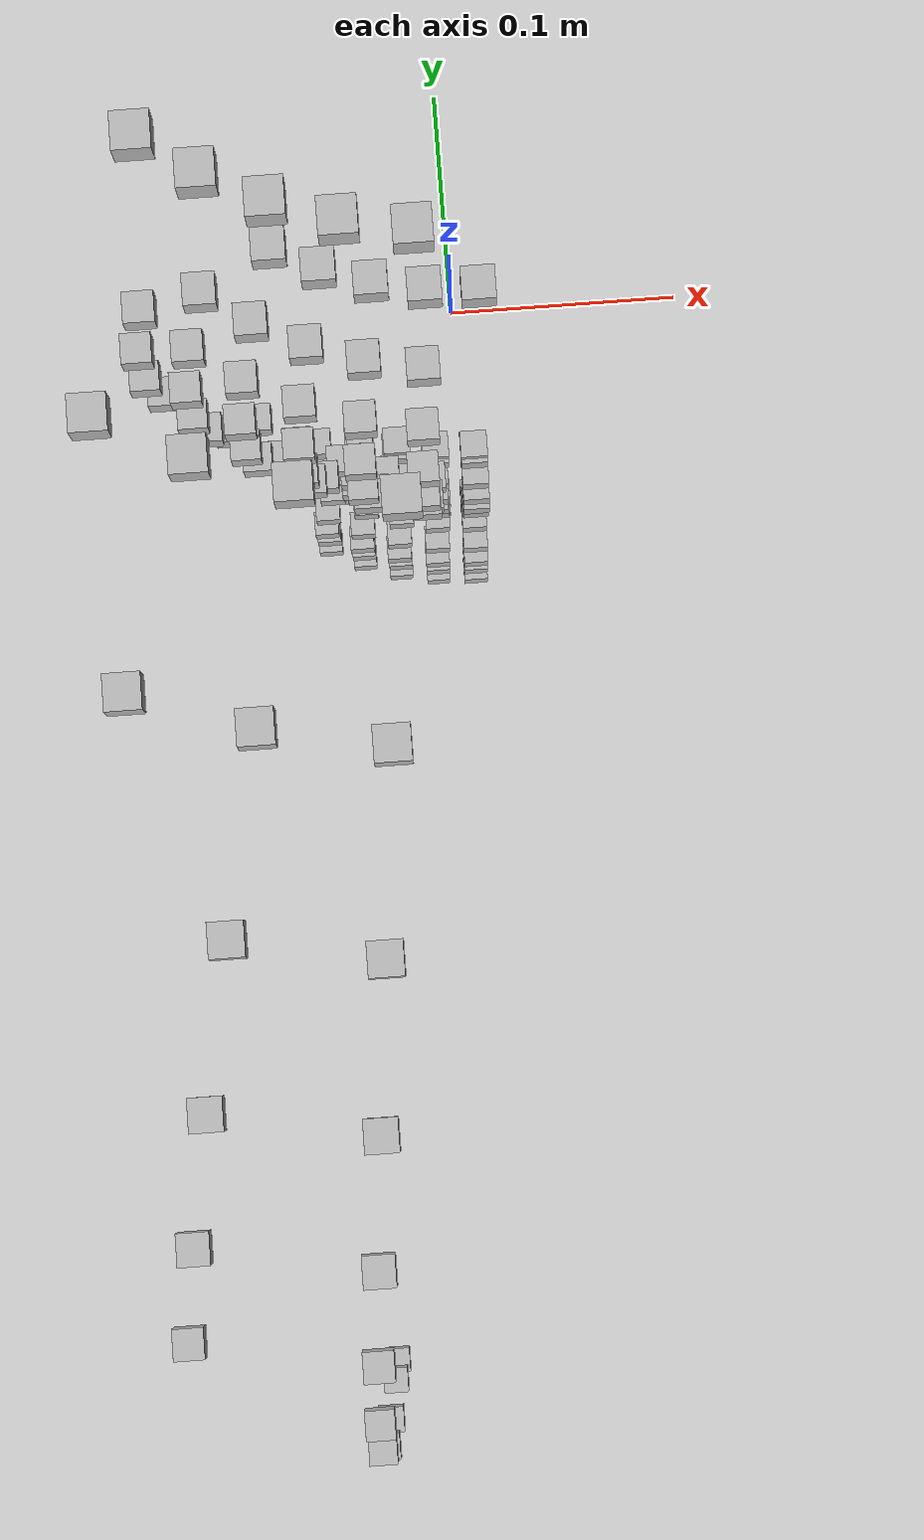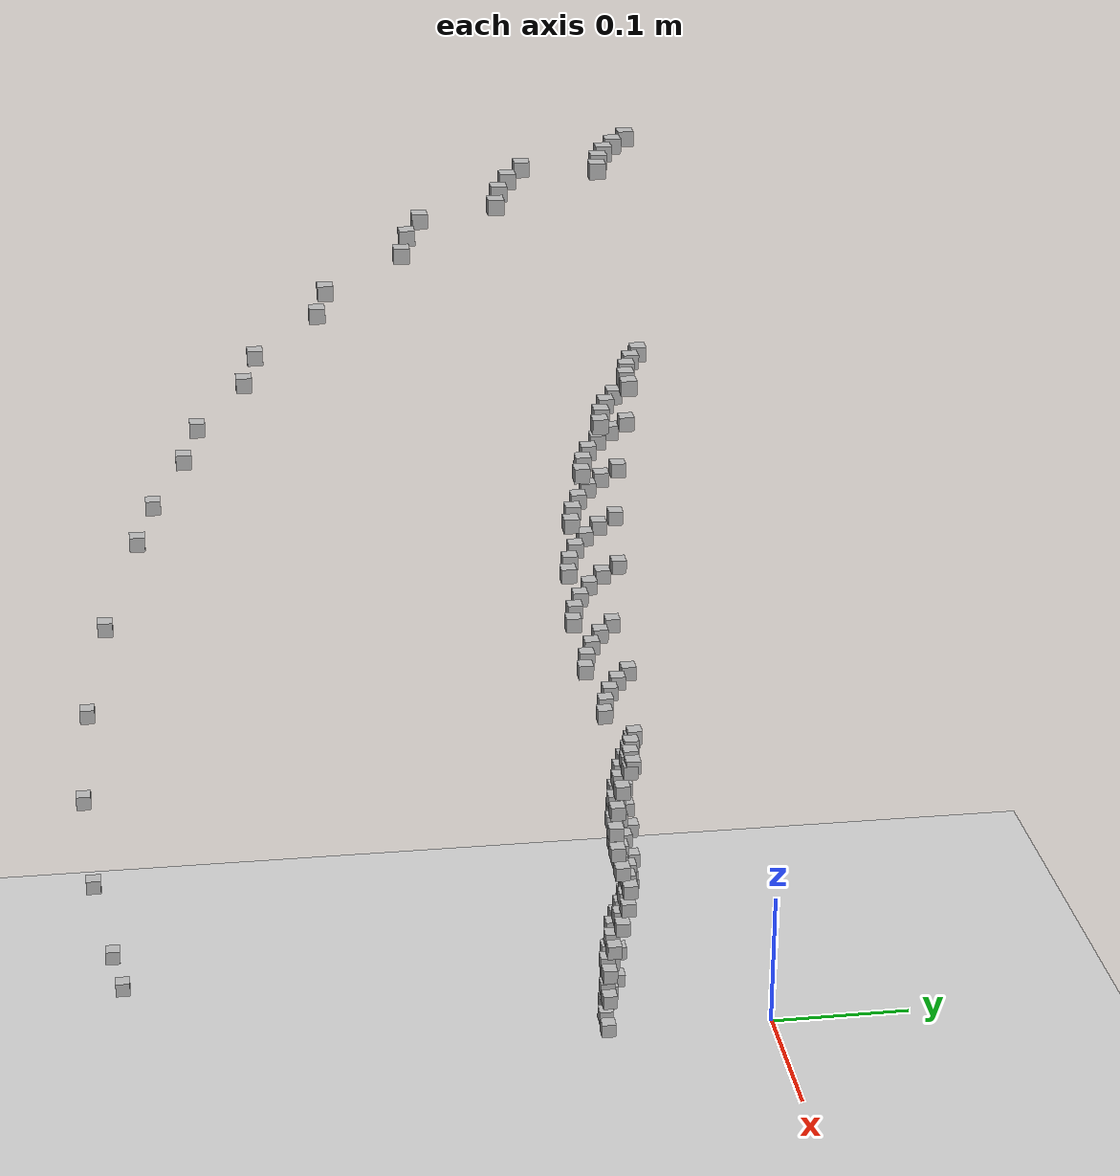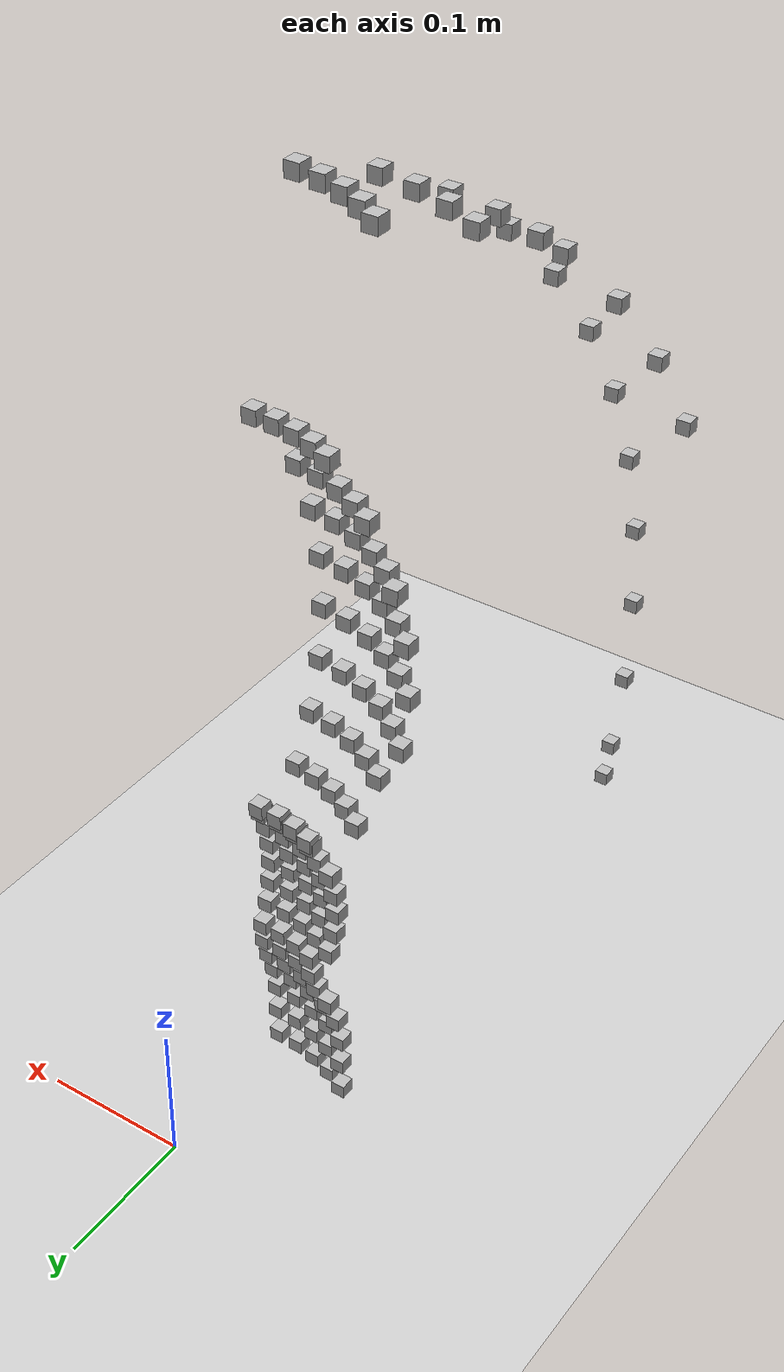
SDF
<sdf version="1.6">
 <world name="default">
  <model name="ground_plane">
   <static>1</static>
   <link name="link">
    <collision name="collision">
     <geometry><plane><normal>0 0 1</normal><size>100 100</size></plane></geometry>
     <surface>
      <contact><collide_bitmask>65535</collide_bitmask></contact>
      <friction><ode><mu>100</mu><mu2>50</mu2></ode></friction>
     </surface>
    </collision>
    <visual name="visual">
     <cast_shadows>0</cast_shadows>
     <geometry><plane><normal>0 0 1</normal><size>100 100</size></plane></geometry>
     <material>
      <script><uri>file://media/materials/scripts/gazebo.material</uri><name>Gazebo/Grey</name></script>
     </material>
    </visual>
   </link>
  </model>
  <model name="box_1685262135_6581895">
   <pose>-0.05602585389841081 -0.4562939630717491 0.031024085780011867 0.0 0.0 0.0</pose>
   <static>1</static>
   <link name="box_1685262135_6581895_link">
    <visual name="visual"><geometry><box><size>0.01 0.01 0.01</size></box></geometry></visual>
   </link>
  </model>
  <model name="box_1685262135_658946">
   <pose>-0.0566995302399395 -0.4617806165774892 0.05746253559996678 0.0 0.0 0.0</pose>
   <static>1</static>
   <link name="box_1685262135_658946_link">
    <visual name="visual"><geometry><box><size>0.01 0.01 0.01</size></box></geometry></visual>
   </link>
  </model>
  <model name="box_1685262135_6596751">
   <pose>-0.05789199654093433 -0.4714924752364766 0.11486971929344875 0.0 0.0 0.0</pose>
   <static>1</static>
   <link name="box_1685262135_6596751_link">
    <visual name="visual"><geometry><box><size>0.01 0.01 0.01</size></box></geometry></visual>
   </link>
  </model>
  <model name="box_1685262135_6604178">
   <pose>-0.05820118961154619 -0.4740106507166687 0.18152491402812204 0.0 0.0 0.0</pose>
   <static>1</static>
   <link name="box_1685262135_6604178_link">
    <visual name="visual"><geometry><box><size>0.01 0.01 0.01</size></box></geometry></visual>
   </link>
  </model>
  <model name="box_1685262135_6611378">
   <pose>-0.0573758755483795 -0.46728900707435994 0.24785452819062248 0.0 0.0 0.0</pose>
   <static>1</static>
   <link name="box_1685262135_6611378_link">
    <visual name="visual"><geometry><box><size>0.01 0.01 0.01</size></box></geometry></visual>
   </link>
  </model>
  <model name="box_1685262135_6618977">
   <pose>-0.05543158307940745 -0.4514540156497495 0.31265492137086764 0.0 0.0 0.0</pose>
   <static>1</static>
   <link name="box_1685262135_6618977_link">
    <visual name="visual"><geometry><box><size>0.01 0.01 0.01</size></box></geometry></visual>
   </link>
  </model>
  <model name="box_1685262135_662612">
   <pose>-0.11130863569951137 -0.41540948375175124 0.37450685986133164 0.0 0.0 0.0</pose>
   <static>1</static>
   <link name="box_1685262135_662612_link">
    <visual name="visual"><geometry><box><size>0.01 0.01 0.01</size></box></geometry></visual>
   </link>
  </model>
  <model name="box_1685262135_6626284">
   <pose>-0.0524115616864629 -0.42685791520571464 0.37450685986133164 0.0 0.0 0.0</pose>
   <static>1</static>
   <link name="box_1685262135_6626284_link">
    <visual name="visual"><geometry><box><size>0.01 0.01 0.01</size></box></geometry></visual>
   </link>
  </model>
  <model name="box_1685262135_6633182">
   <pose>-0.06085809397461202 -0.10128487713690645 0.005648136022940203 0.0 0.0 0.0</pose>
   <static>1</static>
   <link name="box_1685262135_6633182_link">
    <visual name="visual"><geometry><box><size>0.01 0.01 0.01</size></box></geometry></visual>
   </link>
  </model>
  <model name="box_1685262135_6633444">
   <pose>-0.046169696756029506 -0.1087689893320574 0.005648136022940203 0.0 0.0 0.0</pose>
   <static>1</static>
   <link name="box_1685262135_6633444_link">
    <visual name="visual"><geometry><box><size>0.01 0.01 0.01</size></box></geometry></visual>
   </link>
  </model>
  <model name="box_1685262135_6633646">
   <pose>-0.030582658907342606 -0.11413603687275145 0.005648136022940203 0.0 0.0 0.0</pose>
   <static>1</static>
   <link name="box_1685262135_6633646_link">
    <visual name="visual"><geometry><box><size>0.01 0.01 0.01</size></box></geometry></visual>
   </link>
  </model>
  <model name="box_1685262135_6633813">
   <pose>-0.014400364390283131 -0.11728155628353508 0.005648136022940203 0.0 0.0 0.0</pose>
   <static>1</static>
   <link name="box_1685262135_6633813_link">
    <visual name="visual"><geometry><box><size>0.01 0.01 0.01</size></box></geometry></visual>
   </link>
  </model>
  <model name="box_1685262135_6634004">
   <pose>0.002062216839461438 -0.11814432360705267 0.005648136022940203 0.0 0.0 0.0</pose>
   <static>1</static>
   <link name="box_1685262135_6634004_link">
    <visual name="visual"><geometry><box><size>0.01 0.01 0.01</size></box></geometry></visual>
   </link>
  </model>
  <model name="box_1685262135_6640928">
   <pose>-0.102713564813376 -0.383332242510038 0.4324042100445494 0.0 0.0 0.0</pose>
   <static>1</static>
   <link name="box_1685262135_6640928_link">
    <visual name="visual"><geometry><box><size>0.01 0.01 0.01</size></box></geometry></visual>
   </link>
  </model>
  <model name="box_1685262135_6641088">
   <pose>-0.048364426573206075 -0.39389664480253084 0.4324042100445494 0.0 0.0 0.0</pose>
   <static>1</static>
   <link name="box_1685262135_6641088_link">
    <visual name="visual"><geometry><box><size>0.01 0.01 0.01</size></box></geometry></visual>
   </link>
  </model>
  <model name="box_1685262135_664784">
   <pose>-0.060547070302371095 -0.10076724682067058 0.02920890265866033 0.0 0.0 0.0</pose>
   <static>1</static>
   <link name="box_1685262135_664784_link">
    <visual name="visual"><geometry><box><size>0.01 0.01 0.01</size></box></geometry></visual>
   </link>
  </model>
  <model name="box_1685262135_6648">
   <pose>-0.045933740161048064 -0.10821311042953867 0.02920890265866033 0.0 0.0 0.0</pose>
   <static>1</static>
   <link name="box_1685262135_6648_link">
    <visual name="visual"><geometry><box><size>0.01 0.01 0.01</size></box></geometry></visual>
   </link>
  </model>
  <model name="box_1685262135_6648192">
   <pose>-0.03042636201634531 -0.11355272893448448 0.02920890265866033 0.0 0.0 0.0</pose>
   <static>1</static>
   <link name="box_1685262135_6648192_link">
    <visual name="visual"><geometry><box><size>0.01 0.01 0.01</size></box></geometry></visual>
   </link>
  </model>
  <model name="box_1685262135_6648452">
   <pose>-0.014326769344468162 -0.11668217273503531 0.02920890265866033 0.0 0.0 0.0</pose>
   <static>1</static>
   <link name="box_1685262135_6648452_link">
    <visual name="visual"><geometry><box><size>0.01 0.01 0.01</size></box></geometry></visual>
   </link>
  </model>
  <model name="box_1685262135_6648655">
   <pose>0.002051677596240414 -0.11754053076730298 0.02920890265866033 0.0 0.0 0.0</pose>
   <static>1</static>
   <link name="box_1685262135_6648655_link">
    <visual name="visual"><geometry><box><size>0.01 0.01 0.01</size></box></geometry></visual>
   </link>
  </model>
  <model name="box_1685262135_6655657">
   <pose>-0.09210265672984942 -0.34373179442787355 0.4851615351605009 0.0 0.0 0.0</pose>
   <static>1</static>
   <link name="box_1685262135_6655657_link">
    <visual name="visual"><geometry><box><size>0.01 0.01 0.01</size></box></geometry></visual>
   </link>
  </model>
  <model name="box_1685262135_6655822">
   <pose>-0.04336810027674081 -0.35320483257691837 0.4851615351605009 0.0 0.0 0.0</pose>
   <static>1</static>
   <link name="box_1685262135_6655822_link">
    <visual name="visual"><geometry><box><size>0.01 0.01 0.01</size></box></geometry></visual>
   </link>
  </model>
  <model name="box_1685262135_6662629">
   <pose>-0.060687051502615774 -0.1010002146601526 0.05028140928145608 0.0 0.0 0.0</pose>
   <static>1</static>
   <link name="box_1685262135_6662629_link">
    <visual name="visual"><geometry><box><size>0.01 0.01 0.01</size></box></geometry></visual>
   </link>
  </model>
  <model name="box_1685262135_6662788">
   <pose>-0.046039936217229814 -0.10846329265973559 0.05028140928145608 0.0 0.0 0.0</pose>
   <static>1</static>
   <link name="box_1685262135_6662788_link">
    <visual name="visual"><geometry><box><size>0.01 0.01 0.01</size></box></geometry></visual>
   </link>
  </model>
  <model name="box_1685262135_666295">
   <pose>-0.03049670594302677 -0.1138152560428636 0.05028140928145608 0.0 0.0 0.0</pose>
   <static>1</static>
   <link name="box_1685262135_666295_link">
    <visual name="visual"><geometry><box><size>0.01 0.01 0.01</size></box></geometry></visual>
   </link>
  </model>
  <model name="box_1685262135_666313">
   <pose>-0.01435989197713151 -0.11695193493005217 0.05028140928145608 0.0 0.0 0.0</pose>
   <static>1</static>
   <link name="box_1685262135_666313_link">
    <visual name="visual"><geometry><box><size>0.01 0.01 0.01</size></box></geometry></visual>
   </link>
  </model>
  <model name="box_1685262135_666338">
   <pose>0.0020564209519635334 -0.11781227743468152 0.05028140928145608 0.0 0.0 0.0</pose>
   <static>1</static>
   <link name="box_1685262135_666338_link">
    <visual name="visual"><geometry><box><size>0.01 0.01 0.01</size></box></geometry></visual>
   </link>
  </model>
  <model name="box_1685262135_6670432">
   <pose>-0.07969085721392115 -0.2974103280210704 0.5316791207351375 0.0 0.0 0.0</pose>
   <static>1</static>
   <link name="box_1685262135_6670432_link">
    <visual name="visual"><geometry><box><size>0.01 0.01 0.01</size></box></geometry></visual>
   </link>
  </model>
  <model name="box_1685262135_6670594">
   <pose>-0.037523793661347254 -0.30560677486984955 0.5316791207351375 0.0 0.0 0.0</pose>
   <static>1</static>
   <link name="box_1685262135_6670594_link">
    <visual name="visual"><geometry><box><size>0.01 0.01 0.01</size></box></geometry></visual>
   </link>
  </model>
  <model name="box_1685262135_6677356">
   <pose>-0.05917713652477191 -0.09848729414243332 0.06994559093984248 0.0 0.0 0.0</pose>
   <static>1</static>
   <link name="box_1685262135_6677356_link">
    <visual name="visual"><geometry><box><size>0.01 0.01 0.01</size></box></geometry></visual>
   </link>
  </model>
  <model name="box_1685262135_6677513">
   <pose>-0.044894446569073564 -0.10576468816210008 0.06994559093984248 0.0 0.0 0.0</pose>
   <static>1</static>
   <link name="box_1685262135_6677513_link">
    <visual name="visual"><geometry><box><size>0.01 0.01 0.01</size></box></geometry></visual>
   </link>
  </model>
  <model name="box_1685262135_6677673">
   <pose>-0.029737937277584336 -0.1109834928322412 0.06994559093984248 0.0 0.0 0.0</pose>
   <static>1</static>
   <link name="box_1685262135_6677673_link">
    <visual name="visual"><geometry><box><size>0.01 0.01 0.01</size></box></geometry></visual>
   </link>
  </model>
  <model name="box_1685262135_6677833">
   <pose>-0.014002612863389163 -0.11404213005625474 0.06994559093984248 0.0 0.0 0.0</pose>
   <static>1</static>
   <link name="box_1685262135_6677833_link">
    <visual name="visual"><geometry><box><size>0.01 0.01 0.01</size></box></geometry></visual>
   </link>
  </model>
  <model name="box_1685262135_6677992">
   <pose>0.0020052564824557697 -0.11488106693972355 0.06994559093984248 0.0 0.0 0.0</pose>
   <static>1</static>
   <link name="box_1685262135_6677992_link">
    <visual name="visual"><geometry><box><size>0.01 0.01 0.01</size></box></geometry></visual>
   </link>
  </model>
  <model name="box_1685262135_6685004">
   <pose>-0.09923706830094677 -0.2337878821341989 0.5710245451470004 0.0 0.0 0.0</pose>
   <static>1</static>
   <link name="box_1685262135_6685004_link">
    <visual name="visual"><geometry><box><size>0.01 0.01 0.01</size></box></geometry></visual>
   </link>
  </model>
  <model name="box_1685262135_668517">
   <pose>-0.06573431545045118 -0.2453238050618436 0.5710245451470004 0.0 0.0 0.0</pose>
   <static>1</static>
   <link name="box_1685262135_668517_link">
    <visual name="visual"><geometry><box><size>0.01 0.01 0.01</size></box></geometry></visual>
   </link>
  </model>
  <model name="box_1685262135_6685338">
   <pose>-0.030952118921388036 -0.25208477917565175 0.5710245451470004 0.0 0.0 0.0</pose>
   <static>1</static>
   <link name="box_1685262135_6685338_link">
    <visual name="visual"><geometry><box><size>0.01 0.01 0.01</size></box></geometry></visual>
   </link>
  </model>
  <model name="box_1685262135_6693523">
   <pose>-0.056266419372361154 -0.09364304730675037 0.08776207523471741 0.0 0.0 0.0</pose>
   <static>1</static>
   <link name="box_1685262135_6693523_link">
    <visual name="visual"><geometry><box><size>0.01 0.01 0.01</size></box></geometry></visual>
   </link>
  </model>
  <model name="box_1685262135_6693816">
   <pose>-0.042686245169840785 -0.1005624916715022 0.08776207523471741 0.0 0.0 0.0</pose>
   <static>1</static>
   <link name="box_1685262135_6693816_link">
    <visual name="visual"><geometry><box><size>0.01 0.01 0.01</size></box></geometry></visual>
   </link>
  </model>
  <model name="box_1685262135_669409">
   <pose>-0.028275231759973728 -0.10552460152400708 0.08776207523471741 0.0 0.0 0.0</pose>
   <static>1</static>
   <link name="box_1685262135_669409_link">
    <visual name="visual"><geometry><box><size>0.01 0.01 0.01</size></box></geometry></visual>
   </link>
  </model>
  <model name="box_1685262135_6694384">
   <pose>-0.013313873126498161 -0.10843279504030234 0.08776207523471741 0.0 0.0 0.0</pose>
   <static>1</static>
   <link name="box_1685262135_6694384_link">
    <visual name="visual"><geometry><box><size>0.01 0.01 0.01</size></box></geometry></visual>
   </link>
  </model>
  <model name="box_1685262135_6694667">
   <pose>0.0019066249030784271 -0.10923046754161435 0.08776207523471741 0.0 0.0 0.0</pose>
   <static>1</static>
   <link name="box_1685262135_6694667_link">
    <visual name="visual"><geometry><box><size>0.01 0.01 0.01</size></box></geometry></visual>
   </link>
  </model>
  <model name="box_1685262135_6702445">
   <pose>-0.10042390944964202 -0.1671334520344655 0.6025204345093003 0.0 0.0 0.0</pose>
   <static>1</static>
   <link name="box_1685262135_6702445_link">
    <visual name="visual"><geometry><box><size>0.01 0.01 0.01</size></box></geometry></visual>
   </link>
  </model>
  <model name="box_1685262135_6702623">
   <pose>-0.07618611007237838 -0.17948322765692154 0.6025204345093003 0.0 0.0 0.0</pose>
   <static>1</static>
   <link name="box_1685262135_6702623_link">
    <visual name="visual"><geometry><box><size>0.01 0.01 0.01</size></box></geometry></visual>
   </link>
  </model>
  <model name="box_1685262135_6702797">
   <pose>-0.050465434722971735 -0.18833956641218105 0.6025204345093003 0.0 0.0 0.0</pose>
   <static>1</static>
   <link name="box_1685262135_6702797_link">
    <visual name="visual"><geometry><box><size>0.01 0.01 0.01</size></box></geometry></visual>
   </link>
  </model>
  <model name="box_1685262135_670296">
   <pose>-0.02376250709026354 -0.193530089740309 0.6025204345093003 0.0 0.0 0.0</pose>
   <static>1</static>
   <link name="box_1685262135_670296_link">
    <visual name="visual"><geometry><box><size>0.01 0.01 0.01</size></box></geometry></visual>
   </link>
  </model>
  <model name="box_1685262135_671068">
   <pose>-0.04126852978318161 -0.09722256352377644 0.10333120046485805 0.0 0.0 0.0</pose>
   <static>1</static>
   <link name="box_1685262135_671068_link">
    <visual name="visual"><geometry><box><size>0.01 0.01 0.01</size></box></geometry></visual>
   </link>
  </model>
  <model name="box_1685262135_6710844">
   <pose>-0.027336141639304336 -0.10201986948078293 0.10333120046485805 0.0 0.0 0.0</pose>
   <static>1</static>
   <link name="box_1685262135_6710844_link">
    <visual name="visual"><geometry><box><size>0.01 0.01 0.01</size></box></geometry></visual>
   </link>
  </model>
  <model name="box_1685262135_6711004">
   <pose>-0.012871686592818206 -0.10483147472422753 0.10333120046485805 0.0 0.0 0.0</pose>
   <static>1</static>
   <link name="box_1685262135_6711004_link">
    <visual name="visual"><geometry><box><size>0.01 0.01 0.01</size></box></geometry></visual>
   </link>
  </model>
  <model name="box_1685262135_6711166">
   <pose>0.0018433011918705918 -0.10560265455620015 0.10333120046485805 0.0 0.0 0.0</pose>
   <static>1</static>
   <link name="box_1685262135_6711166_link">
    <visual name="visual"><geometry><box><size>0.01 0.01 0.01</size></box></geometry></visual>
   </link>
  </model>
  <model name="box_1685262135_671798">
   <pose>-0.08322898347123096 -0.10277923502992596 0.6254485040649695 0.0 0.0 0.0</pose>
   <static>1</static>
   <link name="box_1685262135_671798_link">
    <visual name="visual"><geometry><box><size>0.01 0.01 0.01</size></box></geometry></visual>
   </link>
  </model>
  <model name="box_1685262135_6718142">
   <pose>-0.06811489987196181 -0.11336223029926597 0.6254485040649695 0.0 0.0 0.0</pose>
   <static>1</static>
   <link name="box_1685262135_6718142_link">
    <visual name="visual"><geometry><box><size>0.01 0.01 0.01</size></box></geometry></visual>
   </link>
  </model>
  <model name="box_1685262135_6718352">
   <pose>-0.05167503722623511 -0.12173875870345653 0.6254485040649695 0.0 0.0 0.0</pose>
   <static>1</static>
   <link name="box_1685262135_6718352_link">
    <visual name="visual"><geometry><box><size>0.01 0.01 0.01</size></box></geometry></visual>
   </link>
  </model>
  <model name="box_1685262135_6718564">
   <pose>-0.03422937876038342 -0.1277457806452699 0.6254485040649695 0.0 0.0 0.0</pose>
   <static>1</static>
   <link name="box_1685262135_6718564_link">
    <visual name="visual"><geometry><box><size>0.01 0.01 0.01</size></box></geometry></visual>
   </link>
  </model>
  <model name="box_1685262135_6718736">
   <pose>-0.016117484372302072 -0.13126637627549484 0.6254485040649695 0.0 0.0 0.0</pose>
   <static>1</static>
   <link name="box_1685262135_6718736_link">
    <visual name="visual"><geometry><box><size>0.01 0.01 0.01</size></box></geometry></visual>
   </link>
  </model>
  <model name="box_1685262135_672583">
   <pose>-0.04079782363614018 -0.09611364933366111 0.1175214826546544 0.0 0.0 0.0</pose>
   <static>1</static>
   <link name="box_1685262135_672583_link">
    <visual name="visual"><geometry><box><size>0.01 0.01 0.01</size></box></geometry></visual>
   </link>
  </model>
  <model name="box_1685262135_6726">
   <pose>-0.027024347398665806 -0.10085623753321257 0.1175214826546544 0.0 0.0 0.0</pose>
   <static>1</static>
   <link name="box_1685262135_6726_link">
    <visual name="visual"><geometry><box><size>0.01 0.01 0.01</size></box></geometry></visual>
   </link>
  </model>
  <model name="box_1685262135_6726167">
   <pose>-0.01272487297881591 -0.10363577379144989 0.1175214826546544 0.0 0.0 0.0</pose>
   <static>1</static>
   <link name="box_1685262135_6726167_link">
    <visual name="visual"><geometry><box><size>0.01 0.01 0.01</size></box></geometry></visual>
   </link>
  </model>
  <model name="box_1685262135_6726334">
   <pose>0.0018222766192381092 -0.10439815759678209 0.1175214826546544 0.0 0.0 0.0</pose>
   <static>1</static>
   <link name="box_1685262135_6726334_link">
    <visual name="visual"><geometry><box><size>0.01 0.01 0.01</size></box></geometry></visual>
   </link>
  </model>
  <model name="box_1685262135_674133">
   <pose>-0.05676906785052228 -0.09447959485578863 0.13255102465284446 0.0 0.0 0.0</pose>
   <static>1</static>
   <link name="box_1685262135_674133_link">
    <visual name="visual"><geometry><box><size>0.01 0.01 0.01</size></box></geometry></visual>
   </link>
  </model>
  <model name="box_1685262135_6741493">
   <pose>-0.04306757699106509 -0.10146085314469735 0.13255102465284446 0.0 0.0 0.0</pose>
   <static>1</static>
   <link name="box_1685262135_6741493_link">
    <visual name="visual"><geometry><box><size>0.01 0.01 0.01</size></box></geometry></visual>
   </link>
  </model>
  <model name="box_1685262135_674168">
   <pose>-0.028527824734119602 -0.10646729133715442 0.13255102465284446 0.0 0.0 0.0</pose>
   <static>1</static>
   <link name="box_1685262135_674168_link">
    <visual name="visual"><geometry><box><size>0.01 0.01 0.01</size></box></geometry></visual>
   </link>
  </model>
  <model name="box_1685262135_674185">
   <pose>-0.013432810818644106 -0.10940146480848272 0.13255102465284446 0.0 0.0 0.0</pose>
   <static>1</static>
   <link name="box_1685262135_674185_link">
    <visual name="visual"><geometry><box><size>0.01 0.01 0.01</size></box></geometry></visual>
   </link>
  </model>
  <model name="box_1685262135_674202">
   <pose>0.0019236574798204124 -0.11020626320963565 0.13255102465284446 0.0 0.0 0.0</pose>
   <static>1</static>
   <link name="box_1685262135_674202_link">
    <visual name="visual"><geometry><box><size>0.01 0.01 0.01</size></box></geometry></visual>
   </link>
  </model>
  <model name="box_1685262135_6756916">
   <pose>-0.058643067925045936 -0.09759845472974171 0.14825398363050718 0.0 0.0 0.0</pose>
   <static>1</static>
   <link name="box_1685262135_6756916_link">
    <visual name="visual"><geometry><box><size>0.01 0.01 0.01</size></box></geometry></visual>
   </link>
  </model>
  <model name="box_1685262135_6757076">
   <pose>-0.04448927802556722 -0.1048101708903233 0.14825398363050718 0.0 0.0 0.0</pose>
   <static>1</static>
   <link name="box_1685262135_6757076_link">
    <visual name="visual"><geometry><box><size>0.01 0.01 0.01</size></box></geometry></visual>
   </link>
  </model>
  <model name="box_1685262135_675724">
   <pose>-0.02946955493512459 -0.10998187629432708 0.14825398363050718 0.0 0.0 0.0</pose>
   <static>1</static>
   <link name="box_1685262135_675724_link">
    <visual name="visual"><geometry><box><size>0.01 0.01 0.01</size></box></geometry></visual>
   </link>
  </model>
  <model name="box_1685262135_6757424">
   <pose>-0.013876240478991607 -0.11301290957879187 0.14825398363050718 0.0 0.0 0.0</pose>
   <static>1</static>
   <link name="box_1685262135_6757424_link">
    <visual name="visual"><geometry><box><size>0.01 0.01 0.01</size></box></geometry></visual>
   </link>
  </model>
  <model name="box_1685262135_6757593">
   <pose>0.0019871592140752983 -0.11384427512858478 0.14825398363050718 0.0 0.0 0.0</pose>
   <static>1</static>
   <link name="box_1685262135_6757593_link">
    <visual name="visual"><geometry><box><size>0.01 0.01 0.01</size></box></geometry></visual>
   </link>
  </model>
  <model name="box_1685262135_6764877">
   <pose>-0.05936154643918626 -0.09879420377933514 0.16428489958480497 0.0 0.0 0.0</pose>
   <static>1</static>
   <link name="box_1685262135_6764877_link">
    <visual name="visual"><geometry><box><size>0.01 0.01 0.01</size></box></geometry></visual>
   </link>
  </model>
  <model name="box_1685262135_676515">
   <pose>-0.04503434825299531 -0.10609427587514983 0.16428489958480497 0.0 0.0 0.0</pose>
   <static>1</static>
   <link name="box_1685262135_676515_link">
    <visual name="visual"><geometry><box><size>0.01 0.01 0.01</size></box></geometry></visual>
   </link>
  </model>
  <model name="box_1685262135_6765418">
   <pose>-0.029830607703871737 -0.11132934357150485 0.16428489958480497 0.0 0.0 0.0</pose>
   <static>1</static>
   <link name="box_1685262135_6765418_link">
    <visual name="visual"><geometry><box><size>0.01 0.01 0.01</size></box></geometry></visual>
   </link>
  </model>
  <model name="box_1685262135_6765733">
   <pose>-0.014046248307605595 -0.11439751223049192 0.16428489958480497 0.0 0.0 0.0</pose>
   <static>1</static>
   <link name="box_1685262135_6765733_link">
    <visual name="visual"><geometry><box><size>0.01 0.01 0.01</size></box></geometry></visual>
   </link>
  </model>
  <model name="box_1685262135_6766043">
   <pose>0.0020115053345974017 -0.11523906343915395 0.16428489958480497 0.0 0.0 0.0</pose>
   <static>1</static>
   <link name="box_1685262135_6766043_link">
    <visual name="visual"><geometry><box><size>0.01 0.01 0.01</size></box></geometry></visual>
   </link>
  </model>
  <model name="box_1685262135_6772902">
   <pose>-0.0589298037793747 -0.09807566332895531 0.18035913689155542 0.0 0.0 0.0</pose>
   <static>1</static>
   <link name="box_1685262135_6772902_link">
    <visual name="visual"><geometry><box><size>0.01 0.01 0.01</size></box></geometry></visual>
   </link>
  </model>
  <model name="box_1685262135_677308">
   <pose>-0.044706808785714966 -0.10532264124625679 0.18035913689155542 0.0 0.0 0.0</pose>
   <static>1</static>
   <link name="box_1685262135_677308_link">
    <visual name="visual"><geometry><box><size>0.01 0.01 0.01</size></box></geometry></visual>
   </link>
  </model>
  <model name="box_1685262135_6773314">
   <pose>-0.029613646612282607 -0.11051963375442862 0.18035913689155542 0.0 0.0 0.0</pose>
   <static>1</static>
   <link name="box_1685262135_6773314_link">
    <visual name="visual"><geometry><box><size>0.01 0.01 0.01</size></box></geometry></visual>
   </link>
  </model>
  <model name="box_1685262135_67735">
   <pose>-0.01394408849256587 -0.11356548730579061 0.18035913689155542 0.0 0.0 0.0</pose>
   <static>1</static>
   <link name="box_1685262135_67735_link">
    <visual name="visual"><geometry><box><size>0.01 0.01 0.01</size></box></geometry></visual>
   </link>
  </model>
  <model name="box_1685262135_6773696">
   <pose>0.0019968754484930374 -0.11440091782557253 0.18035913689155542 0.0 0.0 0.0</pose>
   <static>1</static>
   <link name="box_1685262135_6773696_link">
    <visual name="visual"><geometry><box><size>0.01 0.01 0.01</size></box></geometry></visual>
   </link>
  </model>
  <model name="box_1685262135_6780431">
   <pose>-0.05734870000938389 -0.09544426476509256 0.19617448160834577 0.0 0.0 0.0</pose>
   <static>1</static>
   <link name="box_1685262135_6780431_link">
    <visual name="visual"><geometry><box><size>0.01 0.01 0.01</size></box></geometry></visual>
   </link>
  </model>
  <model name="box_1685262135_6780598">
   <pose>-0.0435073121069208 -0.1024968041577218 0.19617448160834577 0.0 0.0 0.0</pose>
   <static>1</static>
   <link name="box_1685262135_6780598_link">
    <visual name="visual"><geometry><box><size>0.01 0.01 0.01</size></box></geometry></visual>
   </link>
  </model>
  <model name="box_1685262135_6780758">
   <pose>-0.028819103863130552 -0.1075543598458077 0.19617448160834577 0.0 0.0 0.0</pose>
   <static>1</static>
   <link name="box_1685262135_6780758_link">
    <visual name="visual"><geometry><box><size>0.01 0.01 0.01</size></box></geometry></visual>
   </link>
  </model>
  <model name="box_1685262135_6780922">
   <pose>-0.013569964543889194 -0.11051849226076597 0.19617448160834577 0.0 0.0 0.0</pose>
   <static>1</static>
   <link name="box_1685262135_6780922_link">
    <visual name="visual"><geometry><box><size>0.01 0.01 0.01</size></box></geometry></visual>
   </link>
  </model>
  <model name="box_1685262135_6781104">
   <pose>0.0019432986995930274 -0.1113315079367901 0.19617448160834577 0.0 0.0 0.0</pose>
   <static>1</static>
   <link name="box_1685262135_6781104_link">
    <visual name="visual"><geometry><box><size>0.01 0.01 0.01</size></box></geometry></visual>
   </link>
  </model>
  <model name="box_1685262135_678794">
   <pose>-0.04145382526821787 -0.09765909233057557 0.2113835132273968 0.0 0.0 0.0</pose>
   <static>1</static>
   <link name="box_1685262135_678794_link">
    <visual name="visual"><geometry><box><size>0.01 0.01 0.01</size></box></geometry></visual>
   </link>
  </model>
  <model name="box_1685262135_6788118">
   <pose>-0.027458880773717095 -0.10247793816648837 0.2113835132273968 0.0 0.0 0.0</pose>
   <static>1</static>
   <link name="box_1685262135_6788118_link">
    <visual name="visual"><geometry><box><size>0.01 0.01 0.01</size></box></geometry></visual>
   </link>
  </model>
  <model name="box_1685262135_678837">
   <pose>-0.012929480398969814 -0.10530216750291743 0.2113835132273968 0.0 0.0 0.0</pose>
   <static>1</static>
   <link name="box_1685262135_678837_link">
    <visual name="visual"><geometry><box><size>0.01 0.01 0.01</size></box></geometry></visual>
   </link>
  </model>
  <model name="box_1685262135_6788561">
   <pose>0.0018515776046773979 -0.10607680992834241 0.2113835132273968 0.0 0.0 0.0</pose>
   <static>1</static>
   <link name="box_1685262135_6788561_link">
    <visual name="visual"><geometry><box><size>0.01 0.01 0.01</size></box></geometry></visual>
   </link>
  </model>
  <model name="box_1685262135_6795516">
   <pose>-0.04081392237407548 -0.09615157558351276 0.21508165296930842 0.0 0.0 0.0</pose>
   <static>1</static>
   <link name="box_1685262135_6795516_link">
    <visual name="visual"><geometry><box><size>0.01 0.01 0.01</size></box></geometry></visual>
   </link>
  </model>
  <model name="box_1685262135_6795676">
   <pose>-0.027035011150990534 -0.10089603519868778 0.21508165296930842 0.0 0.0 0.0</pose>
   <static>1</static>
   <link name="box_1685262135_6795676_link">
    <visual name="visual"><geometry><box><size>0.01 0.01 0.01</size></box></geometry></visual>
   </link>
  </model>
  <model name="box_1685262135_6795838">
   <pose>-0.0127298941877209 -0.10367666825625936 0.21508165296930842 0.0 0.0 0.0</pose>
   <static>1</static>
   <link name="box_1685262135_6795838_link">
    <visual name="visual"><geometry><box><size>0.01 0.01 0.01</size></box></geometry></visual>
   </link>
  </model>
  <model name="box_1685262135_6795995">
   <pose>0.0018229956858726527 -0.10443935289668506 0.21508165296930842 0.0 0.0 0.0</pose>
   <static>1</static>
   <link name="box_1685262135_6795995_link">
    <visual name="visual"><geometry><box><size>0.01 0.01 0.01</size></box></geometry></visual>
   </link>
  </model>
  <model name="box_1685262135_6802478">
   <pose>-0.07694176910386143 -0.09501517188513499 0.24636117300793503 0.0 0.0 0.0</pose>
   <static>1</static>
   <link name="box_1685262135_6802478_link">
    <visual name="visual"><geometry><box><size>0.01 0.01 0.01</size></box></geometry></visual>
   </link>
  </model>
  <model name="box_1685262135_680264">
   <pose>-0.06296942098653284 -0.10479871536337872 0.24636117300793503 0.0 0.0 0.0</pose>
   <static>1</static>
   <link name="box_1685262135_680264_link">
    <visual name="visual"><geometry><box><size>0.01 0.01 0.01</size></box></geometry></visual>
   </link>
  </model>
  <model name="box_1685262135_6802802">
   <pose>-0.047771444716356096 -0.11254247105384617 0.24636117300793503 0.0 0.0 0.0</pose>
   <static>1</static>
   <link name="box_1685262135_6802802_link">
    <visual name="visual"><geometry><box><size>0.01 0.01 0.01</size></box></geometry></visual>
   </link>
  </model>
  <model name="box_1685262135_6802964">
   <pose>-0.031643651613988494 -0.11809571556041394 0.24636117300793503 0.0 0.0 0.0</pose>
   <static>1</static>
   <link name="box_1685262135_6802964_link">
    <visual name="visual"><geometry><box><size>0.01 0.01 0.01</size></box></geometry></visual>
   </link>
  </model>
  <model name="box_1685262135_6803126">
   <pose>-0.014899950827074779 -0.12135036129548368 0.24636117300793503 0.0 0.0 0.0</pose>
   <static>1</static>
   <link name="box_1685262135_6803126_link">
    <visual name="visual"><geometry><box><size>0.01 0.01 0.01</size></box></geometry></visual>
   </link>
  </model>
  <model name="box_1685262135_680982">
   <pose>-0.08532303101657723 -0.10536516838932326 0.2798396861917631 0.0 0.0 0.0</pose>
   <static>1</static>
   <link name="box_1685262135_680982_link">
    <visual name="visual"><geometry><box><size>0.01 0.01 0.01</size></box></geometry></visual>
   </link>
  </model>
  <model name="box_1685262135_6809978">
   <pose>-0.06982867592604149 -0.1162144326234144 0.2798396861917631 0.0 0.0 0.0</pose>
   <static>1</static>
   <link name="box_1685262135_6809978_link">
    <visual name="visual"><geometry><box><size>0.01 0.01 0.01</size></box></geometry></visual>
   </link>
  </model>
  <model name="box_1685262135_6810143">
   <pose>-0.05297518508754689 -0.12480171511844858 0.2798396861917631 0.0 0.0 0.0</pose>
   <static>1</static>
   <link name="box_1685262135_6810143_link">
    <visual name="visual"><geometry><box><size>0.01 0.01 0.01</size></box></geometry></visual>
   </link>
  </model>
  <model name="box_1685262135_68103">
   <pose>-0.03509059252970315 -0.13095987418854904 0.2798396861917631 0.0 0.0 0.0</pose>
   <static>1</static>
   <link name="box_1685262135_68103_link">
    <visual name="visual"><geometry><box><size>0.01 0.01 0.01</size></box></geometry></visual>
   </link>
  </model>
  <model name="box_1685262135_6810462">
   <pose>-0.016523001503226088 -0.13456904827221838 0.2798396861917631 0.0 0.0 0.0</pose>
   <static>1</static>
   <link name="box_1685262135_6810462_link">
    <visual name="visual"><geometry><box><size>0.01 0.01 0.01</size></box></geometry></visual>
   </link>
  </model>
  <model name="box_1685262135_6817105">
   <pose>-0.10537724616822572 -0.0982658717875126 0.314821790288947 0.0 0.0 0.0</pose>
   <static>1</static>
   <link name="box_1685262135_6817105_link">
    <visual name="visual"><geometry><box><size>0.01 0.01 0.01</size></box></geometry></visual>
   </link>
  </model>
  <model name="box_1685262135_681727">
   <pose>-0.09067575595710156 -0.11197523319809102 0.314821790288947 0.0 0.0 0.0</pose>
   <static>1</static>
   <link name="box_1685262135_681727_link">
    <visual name="visual"><geometry><box><size>0.01 0.01 0.01</size></box></geometry></visual>
   </link>
  </model>
  <model name="box_1685262135_681743">
   <pose>-0.07420936529841615 -0.12350512406440851 0.314821790288947 0.0 0.0 0.0</pose>
   <static>1</static>
   <link name="box_1685262135_681743_link">
    <visual name="visual"><geometry><box><size>0.01 0.01 0.01</size></box></geometry></visual>
   </link>
  </model>
  <model name="box_1685262135_6817753">
   <pose>-0.0562985737560989 -0.13263112817580872 0.314821790288947 0.0 0.0 0.0</pose>
   <static>1</static>
   <link name="box_1685262135_6817753_link">
    <visual name="visual"><geometry><box><size>0.01 0.01 0.01</size></box></geometry></visual>
   </link>
  </model>
  <model name="box_1685262135_6817966">
   <pose>-0.037291994514297745 -0.139175618242939 0.314821790288947 0.0 0.0 0.0</pose>
   <static>1</static>
   <link name="box_1685262135_6817966_link">
    <visual name="visual"><geometry><box><size>0.01 0.01 0.01</size></box></geometry></visual>
   </link>
  </model>
  <model name="box_1685262135_6818187">
   <pose>-0.01755956901829076 -0.14301121321088983 0.314821790288947 0.0 0.0 0.0</pose>
   <static>1</static>
   <link name="box_1685262135_6818187_link">
    <visual name="visual"><geometry><box><size>0.01 0.01 0.01</size></box></geometry></visual>
   </link>
  </model>
  <model name="box_1685262135_682453">
   <pose>-0.1079789268927159 -0.10069197831241326 0.3506667056619606 0.0 0.0 0.0</pose>
   <static>1</static>
   <link name="box_1685262135_682453_link">
    <visual name="visual"><geometry><box><size>0.01 0.01 0.01</size></box></geometry></visual>
   </link>
  </model>
  <model name="box_1685262135_6824696">
   <pose>-0.09291446853529475 -0.11473981299520104 0.3506667056619606 0.0 0.0 0.0</pose>
   <static>1</static>
   <link name="box_1685262135_6824696_link">
    <visual name="visual"><geometry><box><size>0.01 0.01 0.01</size></box></geometry></visual>
   </link>
  </model>
  <model name="box_1685262135_6824856">
   <pose>-0.07604153573647564 -0.12655436773264006 0.3506667056619606 0.0 0.0 0.0</pose>
   <static>1</static>
   <link name="box_1685262135_6824856_link">
    <visual name="visual"><geometry><box><size>0.01 0.01 0.01</size></box></geometry></visual>
   </link>
  </model>
  <model name="box_1685262135_6825027">
   <pose>-0.05768854094051083 -0.13590568565562292 0.3506667056619606 0.0 0.0 0.0</pose>
   <static>1</static>
   <link name="box_1685262135_6825027_link">
    <visual name="visual"><geometry><box><size>0.01 0.01 0.01</size></box></geometry></visual>
   </link>
  </model>
  <model name="box_1685262135_6825228">
   <pose>-0.03821270431488178 -0.14261175399774523 0.3506667056619606 0.0 0.0 0.0</pose>
   <static>1</static>
   <link name="box_1685262135_6825228_link">
    <visual name="visual"><geometry><box><size>0.01 0.01 0.01</size></box></geometry></visual>
   </link>
  </model>
  <model name="box_1685262135_6825392">
   <pose>-0.01799310086607041 -0.14654204676676727 0.3506667056619606 0.0 0.0 0.0</pose>
   <static>1</static>
   <link name="box_1685262135_6825392_link">
    <visual name="visual"><geometry><box><size>0.01 0.01 0.01</size></box></geometry></visual>
   </link>
  </model>
  <model name="box_1685262135_683175">
   <pose>-0.10690138537421423 -0.09968715459047077 0.38661397693110494 0.0 0.0 0.0</pose>
   <static>1</static>
   <link name="box_1685262135_683175_link">
    <visual name="visual"><geometry><box><size>0.01 0.01 0.01</size></box></geometry></visual>
   </link>
  </model>
  <model name="box_1685262135_6831937">
   <pose>-0.09198725801008022 -0.11359480335410424 0.38661397693110494 0.0 0.0 0.0</pose>
   <static>1</static>
   <link name="box_1685262135_6831937_link">
    <visual name="visual"><geometry><box><size>0.01 0.01 0.01</size></box></geometry></visual>
   </link>
  </model>
  <model name="box_1685262135_6832108">
   <pose>-0.07528270330273519 -0.12529145848262374 0.38661397693110494 0.0 0.0 0.0</pose>
   <static>1</static>
   <link name="box_1685262135_6832108_link">
    <visual name="visual"><geometry><box><size>0.01 0.01 0.01</size></box></geometry></visual>
   </link>
  </model>
  <model name="box_1685262135_6832268">
   <pose>-0.057112856408408144 -0.13454945788870065 0.38661397693110494 0.0 0.0 0.0</pose>
   <static>1</static>
   <link name="box_1685262135_6832268_link">
    <visual name="visual"><geometry><box><size>0.01 0.01 0.01</size></box></geometry></visual>
   </link>
  </model>
  <model name="box_1685262135_683243">
   <pose>-0.03783137272900278 -0.14118860514471396 0.38661397693110494 0.0 0.0 0.0</pose>
   <static>1</static>
   <link name="box_1685262135_683243_link">
    <visual name="visual"><geometry><box><size>0.01 0.01 0.01</size></box></geometry></visual>
   </link>
  </model>
  <model name="box_1685262135_6832588">
   <pose>-0.017813544411975968 -0.1450796768012434 0.38661397693110494 0.0 0.0 0.0</pose>
   <static>1</static>
   <link name="box_1685262135_6832588_link">
    <visual name="visual"><geometry><box><size>0.01 0.01 0.01</size></box></geometry></visual>
   </link>
  </model>
  <model name="box_1685262135_6839077">
   <pose>-0.10216161784147006 -0.09526724986140134 0.42204584917069304 0.0 0.0 0.0</pose>
   <static>1</static>
   <link name="box_1685262135_6839077_link">
    <visual name="visual"><geometry><box><size>0.01 0.01 0.01</size></box></geometry></visual>
   </link>
  </model>
  <model name="box_1685262135_6839263">
   <pose>-0.08790874941623829 -0.10855826468866507 0.42204584917069304 0.0 0.0 0.0</pose>
   <static>1</static>
   <link name="box_1685262135_6839263_link">
    <visual name="visual"><geometry><box><size>0.01 0.01 0.01</size></box></geometry></visual>
   </link>
  </model>
  <model name="box_1685262135_6839428">
   <pose>-0.07194483717833988 -0.11973631637695979 0.42204584917069304 0.0 0.0 0.0</pose>
   <static>1</static>
   <link name="box_1685262135_6839428_link">
    <visual name="visual"><geometry><box><size>0.01 0.01 0.01</size></box></geometry></visual>
   </link>
  </model>
  <model name="box_1685262135_683959">
   <pose>-0.05458060052080437 -0.1285838368650182 0.42204584917069304 0.0 0.0 0.0</pose>
   <static>1</static>
   <link name="box_1685262135_683959_link">
    <visual name="visual"><geometry><box><size>0.01 0.01 0.01</size></box></geometry></visual>
   </link>
  </model>
  <model name="box_1685262135_683975">
   <pose>-0.036154014558644365 -0.1349286192304456 0.42204584917069304 0.0 0.0 0.0</pose>
   <static>1</static>
   <link name="box_1685262135_683975_link">
    <visual name="visual"><geometry><box><size>0.01 0.01 0.01</size></box></geometry></visual>
   </link>
  </model>
  <model name="box_1685262135_6839907">
   <pose>-0.01702373182768231 -0.13864716950158196 0.42204584917069304 0.0 0.0 0.0</pose>
   <static>1</static>
   <link name="box_1685262135_6839907_link">
    <visual name="visual"><geometry><box><size>0.01 0.01 0.01</size></box></geometry></visual>
   </link>
  </model>
  <model name="box_1685262135_6847792">
   <pose>-0.08076237507065454 -0.09973322732976865 0.45627229759588134 0.0 0.0 0.0</pose>
   <static>1</static>
   <link name="box_1685262135_6847792_link">
    <visual name="visual"><geometry><box><size>0.01 0.01 0.01</size></box></geometry></visual>
   </link>
  </model>
  <model name="box_1685262135_6847987">
   <pose>-0.06609621867196039 -0.11000258059669686 0.45627229759588134 0.0 0.0 0.0</pose>
   <static>1</static>
   <link name="box_1685262135_6847987_link">
    <visual name="visual"><geometry><box><size>0.01 0.01 0.01</size></box></geometry></visual>
   </link>
  </model>
  <model name="box_1685262135_684816">
   <pose>-0.05014357456015088 -0.11813085875839124 0.45627229759588134 0.0 0.0 0.0</pose>
   <static>1</static>
   <link name="box_1685262135_684816_link">
    <visual name="visual"><geometry><box><size>0.01 0.01 0.01</size></box></geometry></visual>
   </link>
  </model>
  <model name="box_1685262135_6848376">
   <pose>-0.033214942806998764 -0.12395985412621376 0.45627229759588134 0.0 0.0 0.0</pose>
   <static>1</static>
   <link name="box_1685262135_6848376_link">
    <visual name="visual"><geometry><box><size>0.01 0.01 0.01</size></box></geometry></visual>
   </link>
  </model>
  <model name="box_1685262135_684861">
   <pose>-0.015639819973545816 -0.12737611193571372 0.45627229759588134 0.0 0.0 0.0</pose>
   <static>1</static>
   <link name="box_1685262135_684861_link">
    <visual name="visual"><geometry><box><size>0.01 0.01 0.01</size></box></geometry></visual>
   </link>
  </model>
  <model name="box_1685262135_6855326">
   <pose>-0.057841998427829916 -0.09626525120158824 0.4885508417419748 0.0 0.0 0.0</pose>
   <static>1</static>
   <link name="box_1685262135_6855326_link">
    <visual name="visual"><geometry><box><size>0.01 0.01 0.01</size></box></geometry></visual>
   </link>
  </model>
  <model name="box_1685262135_6855493">
   <pose>-0.04388155055085535 -0.10337845468124723 0.4885508417419748 0.0 0.0 0.0</pose>
   <static>1</static>
   <link name="box_1685262135_6855493_link">
    <visual name="visual"><geometry><box><size>0.01 0.01 0.01</size></box></geometry></visual>
   </link>
  </model>
  <model name="box_1685262135_685566">
   <pose>-0.029066998206932378 -0.10847951413178505 0.4885508417419748 0.0 0.0 0.0</pose>
   <static>1</static>
   <link name="box_1685262135_685566_link">
    <visual name="visual"><geometry><box><size>0.01 0.01 0.01</size></box></geometry></visual>
   </link>
  </model>
  <model name="box_1685262135_6855822">
   <pose>-0.013686689806131825 -0.11146914323336612 0.4885508417419748 0.0 0.0 0.0</pose>
   <static>1</static>
   <link name="box_1685262135_6855822_link">
    <visual name="visual"><geometry><box><size>0.01 0.01 0.01</size></box></geometry></visual>
   </link>
  </model>
  <model name="box_1685262135_6855984">
   <pose>0.001960014443366131 -0.11228915225618083 0.4885508417419748 0.0 0.0 0.0</pose>
   <static>1</static>
   <link name="box_1685262135_6855984_link">
    <visual name="visual"><geometry><box><size>0.01 0.01 0.01</size></box></geometry></visual>
   </link>
  </model>
 </world>
</sdf>
